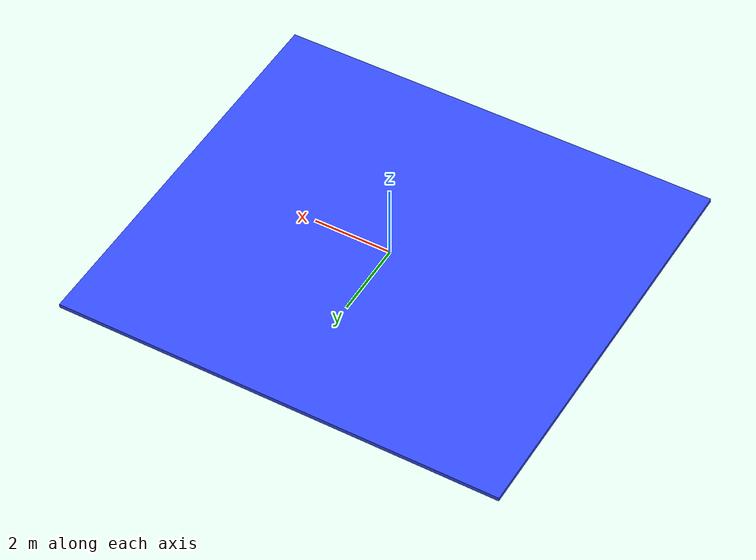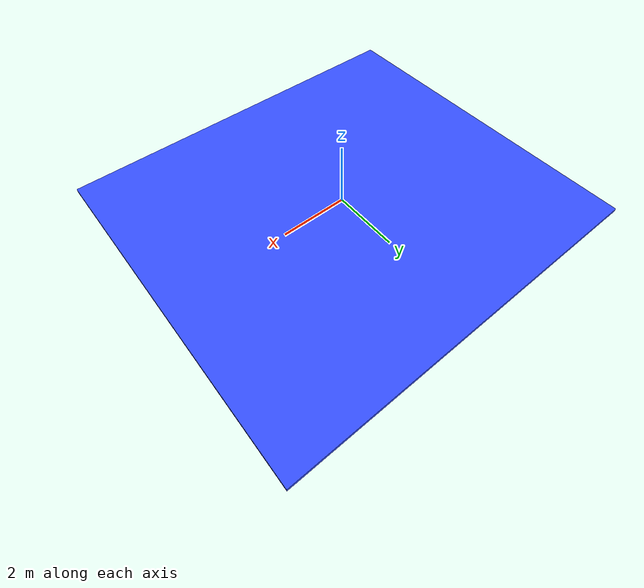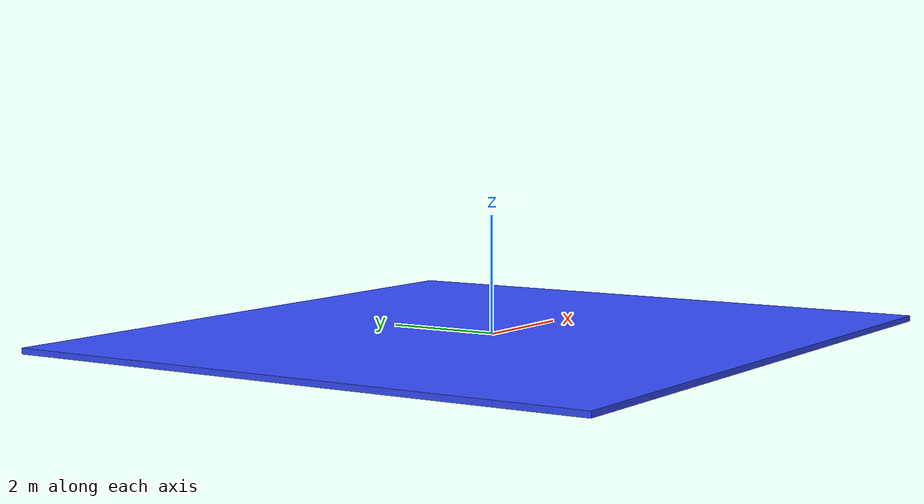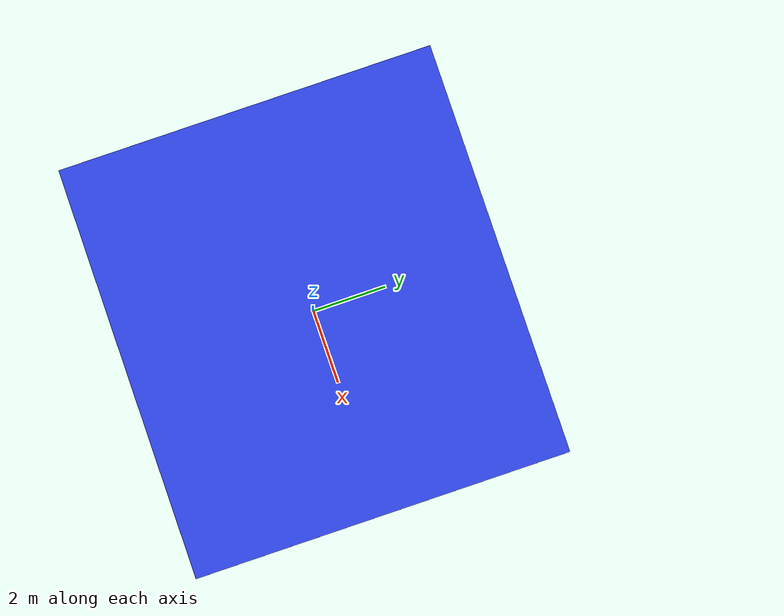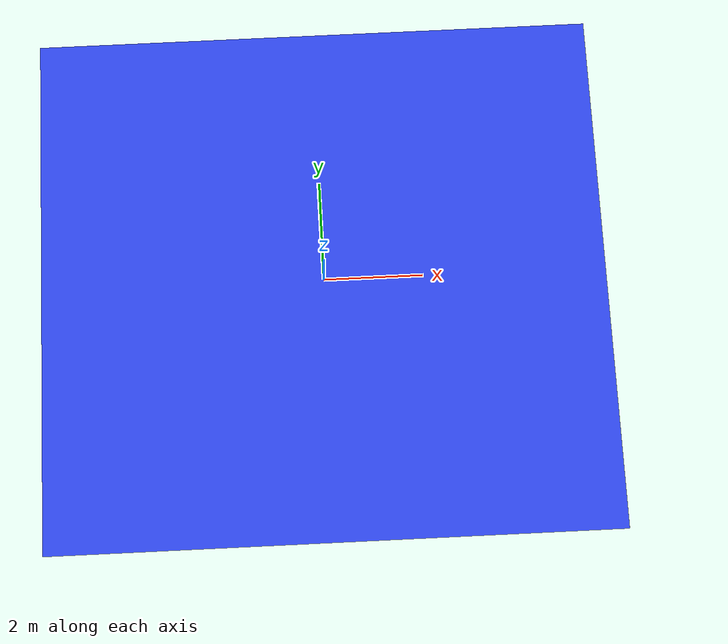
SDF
<?xml version="1.0" ?>
<sdf version="1.9">
  <model name="panel_base">
    <static>true</static>
    <link name="link">
      <collision name="collision">
        <geometry><box><size>11.415 10.421 0.1</size></box></geometry>
      </collision>
      <visual name="visual">
        <geometry><box><size>11.415 10.421 0.1</size></box></geometry>
        <material>
          <ambient>0.2 0.3 1.0 1</ambient>
          <diffuse>0.2 0.3 1.0 1</diffuse>
        </material>
      </visual>
    </link>
  </model>
</sdf>
